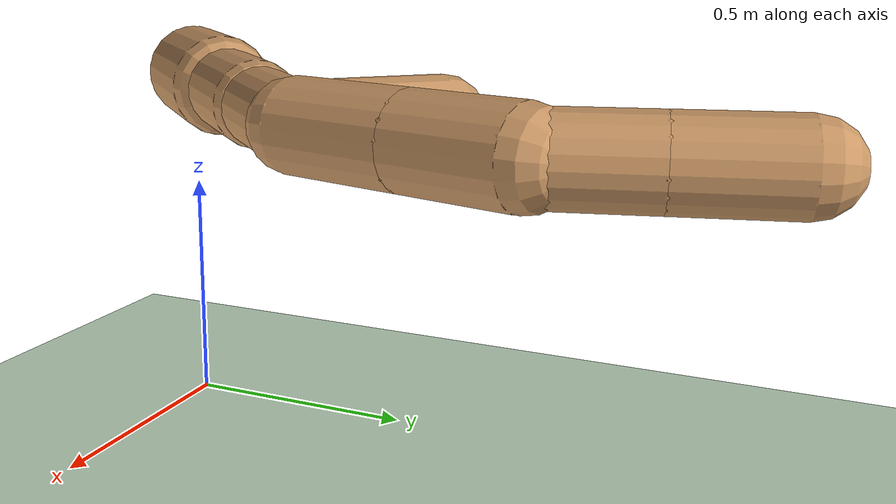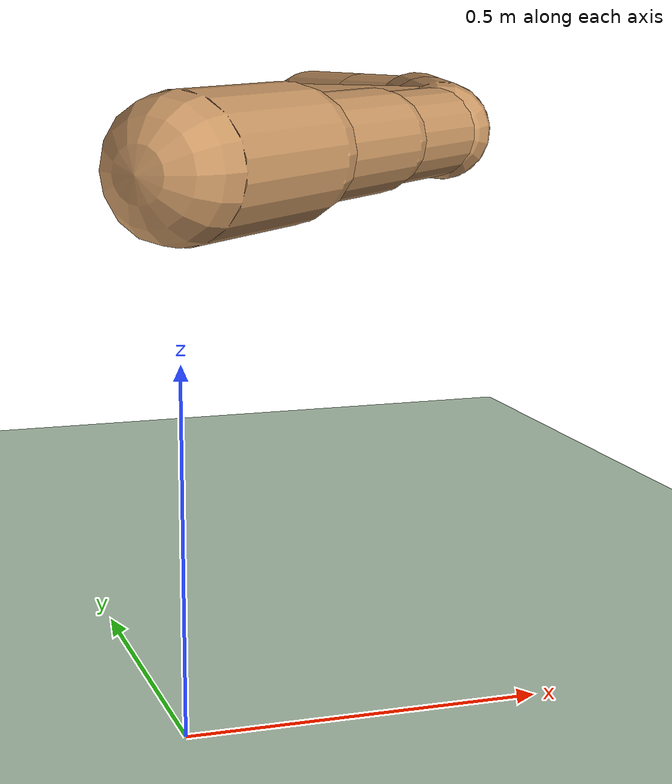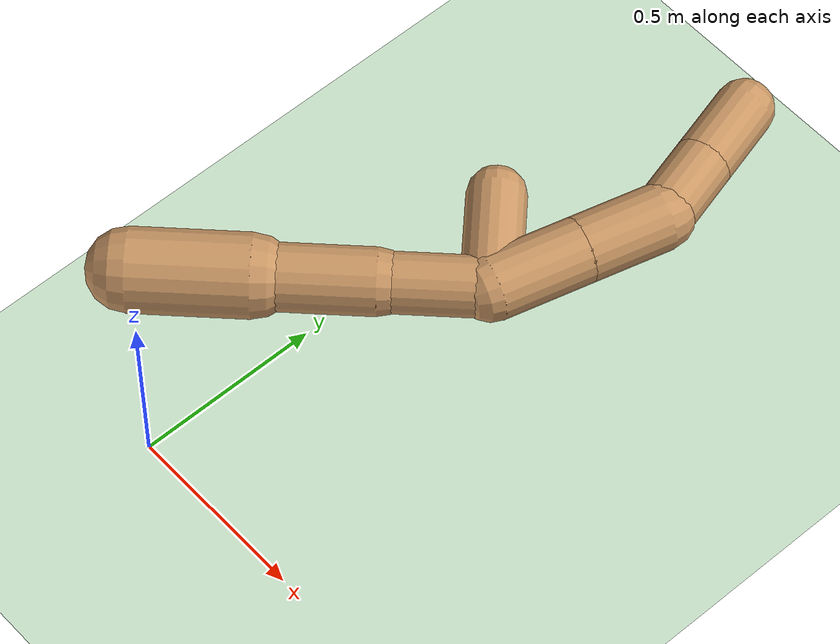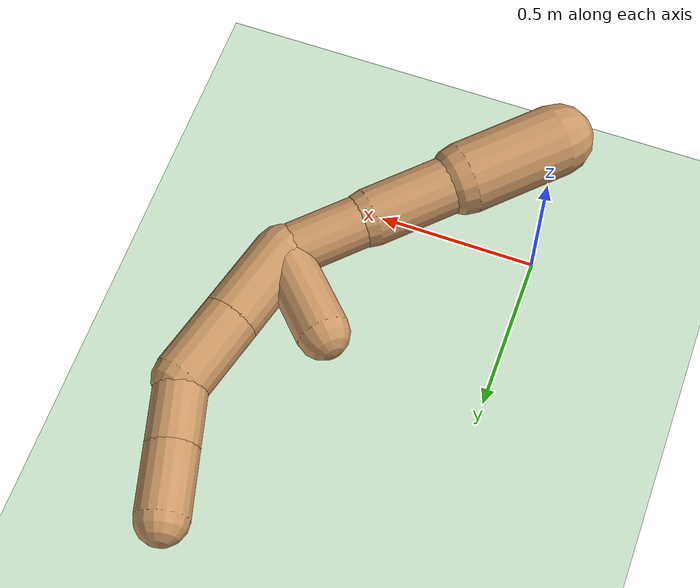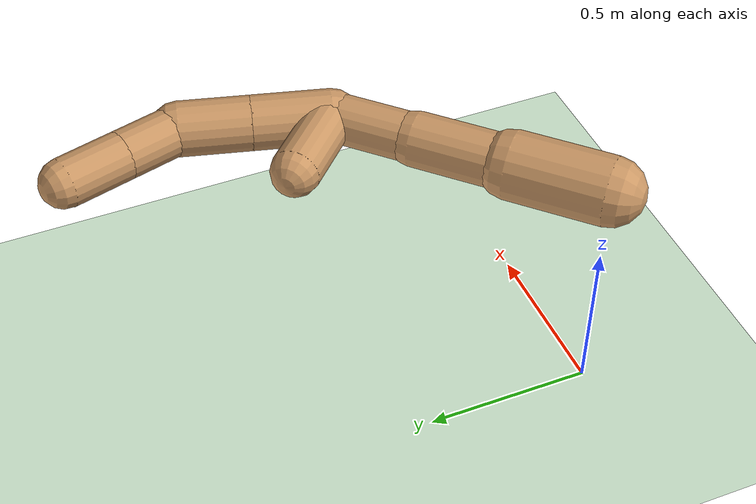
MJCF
<mujoco model="ant">
  <compiler angle="degree" coordinate="local" inertiafromgeom="true"/>
  <option integrator="RK4" timestep="0.01"/>
  <custom>
    <numeric data="0.0 0.0 0.55 1.0 0.0 0.0 0.0 0.0 1.0 0.0 -1.0 0.0 -1.0 0.0 1.0" name="init_qpos"/>
  </custom>
  <default>
    <joint armature="1" damping="1" limited="true"/>
    <geom conaffinity="0" condim="3" density="5.0" friction="1 0.5 0.5" margin="0.01" rgba="0.8 0.6 0.4 1"/>
  </default>
  <asset>
    <texture builtin="gradient" height="100" rgb1="1 1 1" rgb2="0 0 0" type="skybox" width="100"/>
    <texture builtin="flat" height="1278" mark="cross" markrgb="1 1 1" name="texgeom" random="0.01" rgb1="0.8 0.6 0.4" rgb2="0.8 0.6 0.4" type="cube" width="127"/>
    <texture builtin="checker" height="100" name="texplane" rgb1="0 0 0" rgb2="0.8 0.8 0.8" type="2d" width="100"/>
    <material name="MatPlane" reflectance="0.5" shininess="1" specular="1" texrepeat="60 60" texture="texplane"/>
    <material name="geom" texture="texgeom" texuniform="true"/>
  </asset>
  <worldbody>
    <light cutoff="100" diffuse="1 1 1" dir="-0 0 -1.3" directional="true" exponent="1" pos="0 0 1.3" specular=".1 .1 .1"/>
    <geom conaffinity="1" condim="3" material="MatPlane" name="floor" pos="0 0 0" rgba="0.8 0.9 0.8 1" size="40 40 40" type="plane"/>
    <body name="0" pos="0 0 0.75">
      <camera name="track" mode="trackcom" pos="0 -3 0.3" xyaxes="1 0 0 0 0 1"/>
      <geom fromto="0 0 0 0.2 0.2 0" size="0.1" type="capsule"/>
      <joint armature="0" damping="0" limited="false" margin="0.01" name="0_joint" pos="0 0 0" type="free"/>
      <body name="1" pos="0.2 0.2 0">
        <geom fromto="0 0 0 0.2 0.2 0" size="0.08" type="capsule"/>
        <joint axis="0.707 0.707 0" name="1_joint" pos="0 0 0" limited="true" range="-100 100" type="hinge"/>
        <body name="11" pos="0.2 0.2 0">
          <geom fromto="0 0 0 0.18 0.18 0" size="0.07200000000000001" type="capsule"/>
          <joint axis="-0.707 0.707 0" name="11_joint" pos="0 0 0" limited="true" range="-100 100" type="hinge"/>
          <body name="111" pos="0.18 0.18 0">
            <geom fromto="0 0 0 0.059296 0.221296 0" size="0.08" type="capsule"/>
            <joint axis="-0.707 0.707 0" name="111_joint" pos="0 0 0" limited="true" range="-100 100" type="hinge"/>
            <body name="1111" pos="0.059296 0.221296 0">
              <geom fromto="0 0 0 0.053367 0.199167 0" size="0.08" type="capsule"/>
              <joint axis="-0.707 0.707 0" name="1111_joint" pos="0 0 0" limited="true" range="-100 100" type="hinge"/>
              <body name="11111" pos="0.053367 0.199167 0">
                <geom fromto="0 0 0 -0.04803 0.17925 0" size="0.07200000000000001" type="capsule"/>
                <joint axis="-0.707 -0.707 0" name="11111_joint" pos="0 0 0" limited="true" range="-100 100" type="hinge"/>
                <body name="111111" pos="-0.04803 0.17925 0">
                  <geom fromto="0 0 0 -0.04803 0.17925 0" size="0.07200000000000001" type="capsule"/>
                  <joint axis="-0.707 -0.707 0" name="111111_joint" pos="0 0 0" limited="true" range="-100 100" type="hinge"/>
                </body>
              </body>
            </body>
            <body name="2111" pos="0.059296 0.221296 0">
              <geom fromto="0 0 0 0.053367 0.199167 0" size="0.08" type="capsule"/>
              <joint axis="-0.707 0.707 0" name="2111_joint" pos="0 0 0" limited="true" range="-100 100" type="hinge"/>
            </body>
          </body>
          <body name="211" pos="0.18 0.18 0">
            <geom fromto="0 0 0 -0.18 0.18 0" size="0.07200000000000001" type="capsule"/>
            <joint axis="-0.707 -0.707 0" name="211_joint" pos="0 0 0" limited="true" range="-100 100" type="hinge"/>
          </body>
        </body>
      </body>
    </body>
  </worldbody>
  <actuator>
    <motor ctrllimited="true" ctrlrange="-1.0 1.0" joint="1_joint" gear="150" name="1_joint"/>
    <motor ctrllimited="true" ctrlrange="-1.0 1.0" joint="11_joint" gear="150" name="11_joint"/>
    <motor ctrllimited="true" ctrlrange="-1.0 1.0" joint="111_joint" gear="150" name="111_joint"/>
    <motor ctrllimited="true" ctrlrange="-1.0 1.0" joint="211_joint" gear="150" name="211_joint"/>
    <motor ctrllimited="true" ctrlrange="-1.0 1.0" joint="1111_joint" gear="150" name="1111_joint"/>
    <motor ctrllimited="true" ctrlrange="-1.0 1.0" joint="2111_joint" gear="150" name="2111_joint"/>
    <motor ctrllimited="true" ctrlrange="-1.0 1.0" joint="11111_joint" gear="150" name="11111_joint"/>
    <motor ctrllimited="true" ctrlrange="-1.0 1.0" joint="111111_joint" gear="150" name="111111_joint"/>
  </actuator>
</mujoco>
